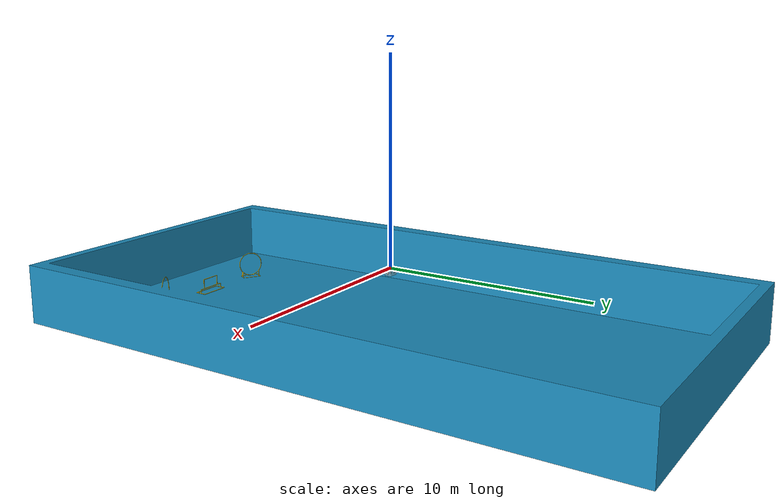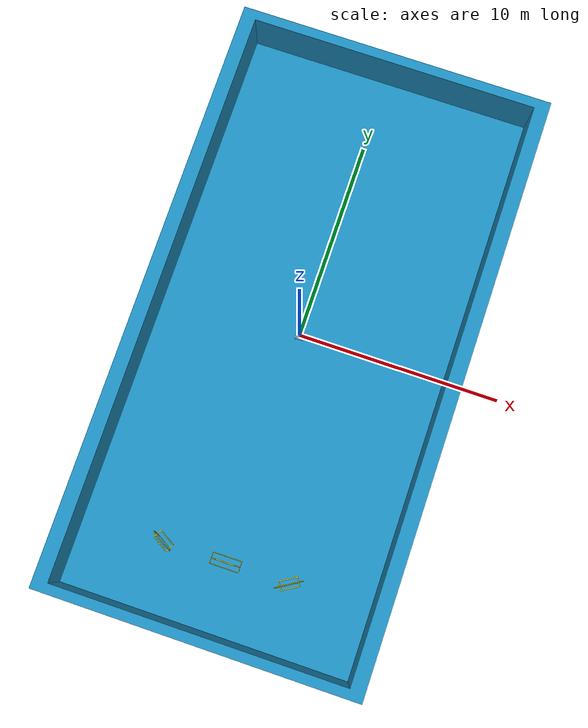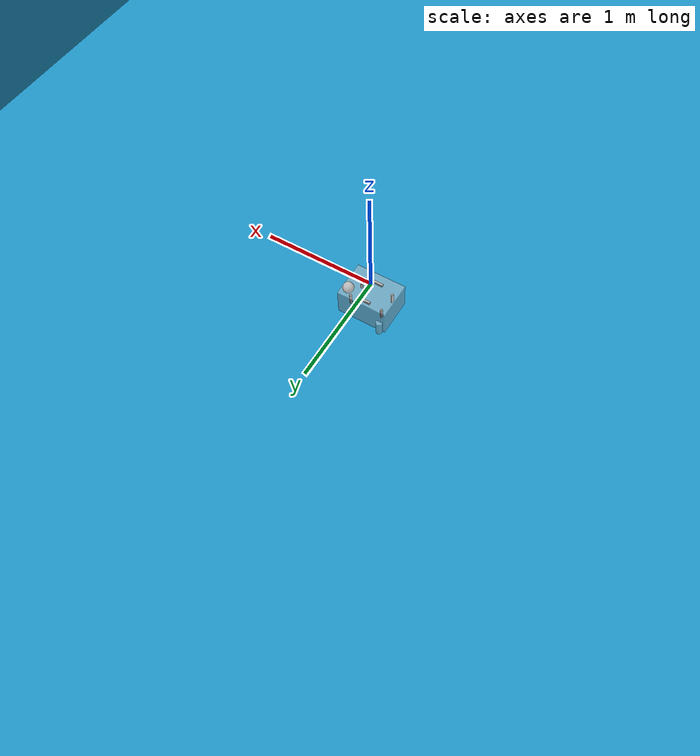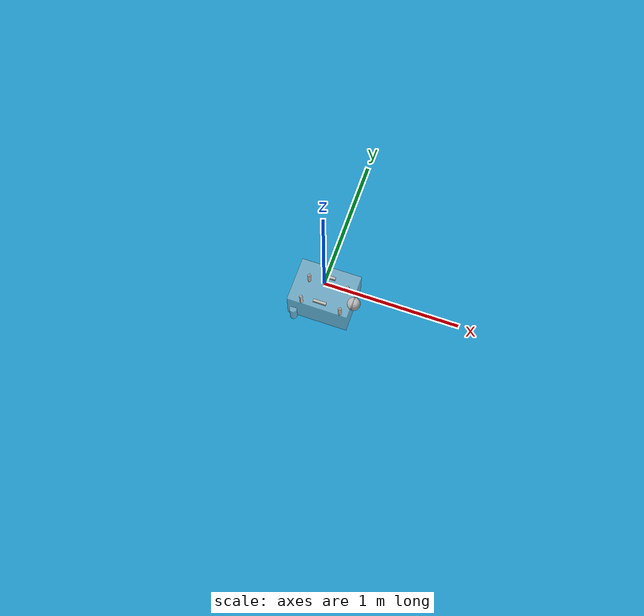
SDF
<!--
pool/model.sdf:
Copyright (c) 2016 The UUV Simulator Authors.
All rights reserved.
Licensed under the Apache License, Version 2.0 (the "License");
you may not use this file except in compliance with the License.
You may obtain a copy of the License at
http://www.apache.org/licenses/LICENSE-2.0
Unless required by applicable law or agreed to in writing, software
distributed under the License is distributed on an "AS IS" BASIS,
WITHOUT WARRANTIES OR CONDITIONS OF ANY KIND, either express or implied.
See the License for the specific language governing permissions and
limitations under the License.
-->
<sdf version="1.6">
 <world name="sand">
  <plugin filename="gz-sim-physics-system" name="gz::sim::systems::Physics"/>
  <plugin filename="gz-sim-user-commands-system" name="gz::sim::systems::UserCommands"/>
  <plugin filename="gz-sim-scene-broadcaster-system" name="gz::sim::systems::SceneBroadcaster"/>
  <plugin filename="libgz-sim-imu-system.so" name="gz::sim::systems::Imu"/>
  <plugin filename="gz-sim-sensors-system" name="gz::sim::systems::Sensors"/>
  <plugin filename="gz-sim-buoyancy-system" name="gz::sim::systems::Buoyancy">
   <graded_buoyancy>
    <default_density>997.4129353</default_density>
    <density_change><above_depth>0</above_depth><density>997.4129353</density></density_change>
   </graded_buoyancy>
   <enable>orca4</enable>
  </plugin>
  <include><uri>https://fuel.gazebosim.org/1.0/OpenRobotics/models/Sun</uri></include>
  <include><uri>model://pool</uri><pose>0 0 -3 0 0 0</pose></include>
  <include><uri>model://orca4</uri><pose>0 0 -0.2 0 0 0</pose></include>
  <include><uri>model://large_circle</uri><pose>3.28 -11.5 -3 0 0 0.55</pose></include>
  <include><uri>model://small_circle</uri><pose>-3.28 -11.5 -3 0 0 -0.55</pose></include>
  <include><uri>model://rectangle</uri><pose>0 -11.5 -3 0 0 0</pose></include>
 </world>
</sdf>

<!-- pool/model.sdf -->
<sdf version="1.7">
  <model name="pool">
    <static>true</static>
    <link name="link">
      <collision name="pool_collision">
        <scale>3 3 3</scale>
        <pose>0 0 0 0 0 0</pose>
        <geometry>
          <mesh>
            <uri>models://pool/pool.dae</uri>
          </mesh>
        </geometry>
      </collision>
      <visual name="pool_visual">
        <scale>3 3 3</scale>
        <pose>0 0 0 0 0 0</pose>
        <geometry>
          <mesh>
            <uri>models://pool/pool.dae</uri>
          </mesh>
        </geometry>
        <material>
          <ambient>0.11 0.55 0.74 1</ambient>
          <diffuse>0.11 0.55 0.74 1</diffuse>
          <specular>0.1 0.1 0.1 1</specular>
          <emissive>0.11 0.55 0.74 1</emissive>
        </material>
      </visual>
    </link>
  </model>
</sdf>

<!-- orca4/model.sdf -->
<sdf version="1.6">
  <model name="orca4">
    <pose>0 0 0 0 0 0</pose>

    <!-- BlueROV2 thruster reference: http://www.ardusub.com/introduction/features.html -->
    <!-- fluid_density: 1000 -->
    <!-- displaced_mass: 10.05 -->

    <link name="base_link">
      <inertial>
        <pose>0 0 0.011 0 0 0</pose>
        <mass>10</mass>
        <inertia>
          <ixx>0.09873097998042396</ixx>
          <ixy>0</ixy>
          <ixz>0</ixz>
          <iyy>0.17756847998042397</iyy>
          <iyz>0</iyz>
          <izz>0.2692441666666667</izz>
        </inertia>
      </inertial>

      <visual name="base_link_box">
        <pose>0 0 0 0 0 0</pose>
        <transparency>0.5</transparency>
        <geometry>
          <box>
            <size>0.457 0.338 0.25</size>
          </box>
        </geometry>
      </visual>

      <visual name="base_link_dome">
        <pose>0.2285 0 0 0 0 0</pose>
        <geometry>
          <sphere>
            <radius>0.05</radius>
          </sphere>
        </geometry>
        <material>
          <emissive>0 1 0 0</emissive>
        </material>
      </visual>

      <!-- Collision volume * fluid_density == displaced mass, used by BuoyancyPlugin -->
      <collision name="base_link_collision">
        <pose>0 0 0.06 0 0 0</pose>
        <geometry>
          <box>
            <size>0.457 0.338 0.06506286173008947</size>
          </box>
        </geometry>
      </collision>

      <!-- IMU sensor gyro and accel data will be sent to ArduSub -->
      <sensor name="imu_sensor" type="imu">
        <!-- Transform from the Gazebo body frame (x-forward, y-left, z-up)
             to the ArduPilot body frame (x-forward, y-right, z-down) -->
        <pose>0 0 0 3.141592653589793 0 0</pose>
        <always_on>1</always_on>
        <update_rate>1000.0</update_rate>
      </sensor>

    </link>

    <!-- Hydrodynamics plugin -->
    <plugin
        filename="gz-sim-hydrodynamics-system"
        name="gz::sim::systems::Hydrodynamics">
      <link_name>base_link</link_name>
      <water_density>1000</water_density>
      <!-- Added mass: -->
      <xDotU>0</xDotU>
      <yDotV>0</yDotV>
      <zDotW>0</zDotW>
      <kDotP>0</kDotP>
      <mDotQ>0</mDotQ>
      <nDotR>0</nDotR>
      <!-- First order stability derivative: -->
      <xU>0</xU>
      <yV>0</yV>
      <zW>0</zW>
      <kP>0</kP>
      <mQ>0</mQ>
      <nR>0</nR>
      <!-- Second order stability derivative: -->
      <xUabsU>-33.800000000000004</xUabsU>
      <yVabsV>-54.26875</yVabsV>
      <zWabsW>-73.37135</zWabsW>
      <kPabsP>-4.0</kPabsP>
      <mQabsQ>-4.0</mQabsQ>
      <nRabsR>-4.0</nRabsR>
    </plugin>

    <link name="thruster1">
      <pose>0.15 -0.09 0 -1.5707963267948966 1.5707963267948966 -0.7853981633974483</pose>
      <visual name="thruster_front">
        <pose>0 0 0.005 0 0 0</pose>
        <geometry>
          <box>
            <size>0.1 0.02 0.01</size>
          </box>
        </geometry>
        <material>
          <emissive>0 0 1 0</emissive>
        </material>
      </visual>
      <visual name="thruster_back">
        <pose>0 0 -0.005 0 0 0</pose>
        <geometry>
          <box>
            <size>0.1 0.02 0.01</size>
          </box>
        </geometry>
        <material>
          <emissive>1 0 0 0</emissive>
        </material>
      </visual>
      <inertial>
        <mass>0.002</mass>
        <inertia>
          <ixx>0.001</ixx>
          <ixy>0</ixy>
          <ixz>0</ixz>
          <iyy>0.001</iyy>
          <iyz>0</iyz>
          <izz>0.001</izz>
        </inertia>
      </inertial>
    </link>

    <link name="thruster2">
      <pose>0.15 0.09 0 -1.5707963267948966 1.5707963267948966 -2.356194490192345</pose>
      <visual name="thruster_front">
        <pose>0 0 0.005 0 0 0</pose>
        <geometry>
          <box>
            <size>0.1 0.02 0.01</size>
          </box>
        </geometry>
        <material>
          <emissive>0 0 1 0</emissive>
        </material>
      </visual>
      <visual name="thruster_back">
        <pose>0 0 -0.005 0 0 0</pose>
        <geometry>
          <box>
            <size>0.1 0.02 0.01</size>
          </box>
        </geometry>
        <material>
          <emissive>1 0 0 0</emissive>
        </material>
      </visual>
      <inertial>
        <mass>0.002</mass>
        <inertia>
          <ixx>0.001</ixx>
          <ixy>0</ixy>
          <ixz>0</ixz>
          <iyy>0.001</iyy>
          <iyz>0</iyz>
          <izz>0.001</izz>
        </inertia>
      </inertial>
    </link>

    <link name="thruster3">
      <pose>-0.15 -0.09 0 -1.5707963267948966 1.5707963267948966 0.7853981633974483</pose>
      <visual name="thruster_front">
        <pose>0 0 0.005 0 0 0</pose>
        <geometry>
          <box>
            <size>0.1 0.02 0.01</size>
          </box>
        </geometry>
        <material>
          <emissive>0 0 1 0</emissive>
        </material>
      </visual>
      <visual name="thruster_back">
        <pose>0 0 -0.005 0 0 0</pose>
        <geometry>
          <box>
            <size>0.1 0.02 0.01</size>
          </box>
        </geometry>
        <material>
          <emissive>1 0 0 0</emissive>
        </material>
      </visual>
      <inertial>
        <mass>0.002</mass>
        <inertia>
          <ixx>0.001</ixx>
          <ixy>0</ixy>
          <ixz>0</ixz>
          <iyy>0.001</iyy>
          <iyz>0</iyz>
          <izz>0.001</izz>
        </inertia>
      </inertial>
    </link>

    <link name="thruster4">
      <pose>-0.15 0.09 0 -1.5707963267948966 1.5707963267948966 2.356194490192345</pose>
      <visual name="thruster_front">
        <pose>0 0 0.005 0 0 0</pose>
        <geometry>
          <box>
            <size>0.1 0.02 0.01</size>
          </box>
        </geometry>
        <material>
          <emissive>0 0 1 0</emissive>
        </material>
      </visual>
      <visual name="thruster_back">
        <pose>0 0 -0.005 0 0 0</pose>
        <geometry>
          <box>
            <size>0.1 0.02 0.01</size>
          </box>
        </geometry>
        <material>
          <emissive>1 0 0 0</emissive>
        </material>
      </visual>
      <inertial>
        <mass>0.002</mass>
        <inertia>
          <ixx>0.001</ixx>
          <ixy>0</ixy>
          <ixz>0</ixz>
          <iyy>0.001</iyy>
          <iyz>0</iyz>
          <izz>0.001</izz>
        </inertia>
      </inertial>
    </link>

    <link name="thruster5">
      <pose>0 -0.105 0.09 0 0 0</pose>
      <visual name="thruster_front">
        <pose>0 0 0.005 0 0 0</pose>
        <geometry>
          <box>
            <size>0.1 0.02 0.01</size>
          </box>
        </geometry>
        <material>
          <emissive>0 0 1 0</emissive>
        </material>
      </visual>
      <visual name="thruster_back">
        <pose>0 0 -0.005 0 0 0</pose>
        <geometry>
          <box>
            <size>0.1 0.02 0.01</size>
          </box>
        </geometry>
        <material>
          <emissive>1 0 0 0</emissive>
        </material>
      </visual>
      <inertial>
        <mass>0.002</mass>
        <inertia>
          <ixx>0.001</ixx>
          <ixy>0</ixy>
          <ixz>0</ixz>
          <iyy>0.001</iyy>
          <iyz>0</iyz>
          <izz>0.001</izz>
        </inertia>
      </inertial>
    </link>

    <link name="thruster6">
      <pose>0 0.105 0.09 0 0 0</pose>
      <visual name="thruster_front">
        <pose>0 0 0.005 0 0 0</pose>
        <geometry>
          <box>
            <size>0.1 0.02 0.01</size>
          </box>
        </geometry>
        <material>
          <emissive>0 0 1 0</emissive>
        </material>
      </visual>
      <visual name="thruster_back">
        <pose>0 0 -0.005 0 0 0</pose>
        <geometry>
          <box>
            <size>0.1 0.02 0.01</size>
          </box>
        </geometry>
        <material>
          <emissive>1 0 0 0</emissive>
        </material>
      </visual>
      <inertial>
        <mass>0.002</mass>
        <inertia>
          <ixx>0.001</ixx>
          <ixy>0</ixy>
          <ixz>0</ixz>
          <iyy>0.001</iyy>
          <iyz>0</iyz>
          <izz>0.001</izz>
        </inertia>
      </inertial>
    </link>

    <joint name="thruster1_joint" type="revolute">
      <parent>base_link</parent>
      <child>thruster1</child>
      <axis>
        <xyz>0 0 -1</xyz>
      </axis>
    </joint>

    <joint name="thruster2_joint" type="revolute">
      <parent>base_link</parent>
      <child>thruster2</child>
      <axis>
        <xyz>0 0 -1</xyz>
      </axis>
    </joint>

    <joint name="thruster3_joint" type="revolute">
      <parent>base_link</parent>
      <child>thruster3</child>
      <axis>
        <xyz>0 0 -1</xyz>
      </axis>
    </joint>

    <joint name="thruster4_joint" type="revolute">
      <parent>base_link</parent>
      <child>thruster4</child>
      <axis>
        <xyz>0 0 -1</xyz>
      </axis>
    </joint>

    <joint name="thruster5_joint" type="revolute">
      <parent>base_link</parent>
      <child>thruster5</child>
      <axis>
        <xyz>0 0 -1</xyz>
      </axis>
    </joint>

    <joint name="thruster6_joint" type="revolute">
      <parent>base_link</parent>
      <child>thruster6</child>
      <axis>
        <xyz>0 0 -1</xyz>
      </axis>
    </joint>

    <plugin
        filename="gz-sim-thruster-system"
        name="gz::sim::systems::Thruster">
      <namespace>orca4</namespace>
      <joint_name>thruster1_joint</joint_name>
      <thrust_coefficient>0.02</thrust_coefficient>
      <fluid_density>1000</fluid_density>
      <propeller_diameter>0.1</propeller_diameter>
      <velocity_control>true</velocity_control>
      <use_angvel_cmd>False</use_angvel_cmd>
    </plugin>

    <plugin
        filename="gz-sim-thruster-system"
        name="gz::sim::systems::Thruster">
      <namespace>orca4</namespace>
      <joint_name>thruster2_joint</joint_name>
      <thrust_coefficient>0.02</thrust_coefficient>
      <fluid_density>1000</fluid_density>
      <propeller_diameter>0.1</propeller_diameter>
      <velocity_control>true</velocity_control>
      <use_angvel_cmd>False</use_angvel_cmd>
    </plugin>

    <plugin
        filename="gz-sim-thruster-system"
        name="gz::sim::systems::Thruster">
      <namespace>orca4</namespace>
      <joint_name>thruster3_joint</joint_name>
      <!-- Reverse spin to balance torque -->
      <thrust_coefficient>-0.02</thrust_coefficient>
      <fluid_density>1000</fluid_density>
      <propeller_diameter>0.1</propeller_diameter>
      <velocity_control>true</velocity_control>
      <use_angvel_cmd>False</use_angvel_cmd>
    </plugin>

    <plugin
        filename="gz-sim-thruster-system"
        name="gz::sim::systems::Thruster">
      <namespace>orca4</namespace>
      <joint_name>thruster4_joint</joint_name>
      <!-- Reverse spin to balance torque -->
      <thrust_coefficient>-0.02</thrust_coefficient>
      <fluid_density>1000</fluid_density>
      <propeller_diameter>0.1</propeller_diameter>
      <velocity_control>true</velocity_control>
      <use_angvel_cmd>False</use_angvel_cmd>
    </plugin>

    <plugin
        filename="gz-sim-thruster-system"
        name="gz::sim::systems::Thruster">
      <namespace>orca4</namespace>
      <joint_name>thruster5_joint</joint_name>
      <thrust_coefficient>0.02</thrust_coefficient>
      <fluid_density>1000</fluid_density>
      <propeller_diameter>0.1</propeller_diameter>
      <velocity_control>true</velocity_control>
      <use_angvel_cmd>False</use_angvel_cmd>
    </plugin>

    <plugin
        filename="gz-sim-thruster-system"
        name="gz::sim::systems::Thruster">
      <namespace>orca4</namespace>
      <joint_name>thruster6_joint</joint_name>
      <!-- Reverse spin to balance torque -->
      <thrust_coefficient>-0.02</thrust_coefficient>
      <fluid_density>1000</fluid_density>
      <propeller_diameter>0.1</propeller_diameter>
      <velocity_control>true</velocity_control>
      <use_angvel_cmd>False</use_angvel_cmd>
    </plugin>

    <plugin name="ArduPilotPlugin" filename="libArduPilotPlugin.so">
      <!-- Port settings -->
      <fdm_addr>127.0.0.1</fdm_addr>
      <fdm_port_in>9002</fdm_port_in>
      <connectionTimeoutMaxCount>5</connectionTimeoutMaxCount>
      <lock_step>1</lock_step>

      <!-- Transform from the Gazebo body frame (x-forward, y-left, z-up)
           to the ArduPilot body frame (x-forward, y-right, z-down) -->
      <modelXYZToAirplaneXForwardZDown>0 0 0 3.141592653589793 0 0</modelXYZToAirplaneXForwardZDown>

      <!-- Transform from the Gazebo world frame (ENU)
           to the ArduPilot world frame (NED) -->
      <gazeboXYZToNED>0 0 0 3.141592653589793 0 1.5707963267948966</gazeboXYZToNED>

      <!-- Sensors -->
      <imuName>imu_sensor</imuName>

      <!-- Thrusters -->
      <control channel="0">
        <jointName>thruster1_joint</jointName>
        <servo_min>1100</servo_min>
        <servo_max>1900</servo_max>
        <type>COMMAND</type>
        <cmd_topic>/model/orca4/joint/thruster1_joint/cmd_thrust</cmd_topic>
        <offset>-0.5</offset>
        <multiplier>100</multiplier>
      </control>
      <control channel="1">
        <jointName>thruster2_joint</jointName>
        <servo_min>1100</servo_min>
        <servo_max>1900</servo_max>
        <type>COMMAND</type>
        <cmd_topic>/model/orca4/joint/thruster2_joint/cmd_thrust</cmd_topic>
        <offset>-0.5</offset>
        <multiplier>100</multiplier>
      </control>
      <control channel="2">
        <jointName>thruster3_joint</jointName>
        <servo_min>1100</servo_min>
        <servo_max>1900</servo_max>
        <type>COMMAND</type>
        <cmd_topic>/model/orca4/joint/thruster3_joint/cmd_thrust</cmd_topic>
        <offset>-0.5</offset>
        <multiplier>100</multiplier>
      </control>
      <control channel="3">
        <jointName>thruster4_joint</jointName>
        <servo_min>1100</servo_min>
        <servo_max>1900</servo_max>
        <type>COMMAND</type>
        <cmd_topic>/model/orca4/joint/thruster4_joint/cmd_thrust</cmd_topic>
        <offset>-0.5</offset>
        <multiplier>100</multiplier>
      </control>
      <control channel="4">
        <jointName>thruster5_joint</jointName>
        <servo_min>1100</servo_min>
        <servo_max>1900</servo_max>
        <type>COMMAND</type>
        <cmd_topic>/model/orca4/joint/thruster5_joint/cmd_thrust</cmd_topic>
        <offset>-0.5</offset>
        <multiplier>100</multiplier>
      </control>
      <control channel="5">
        <jointName>thruster6_joint</jointName>
        <servo_min>1100</servo_min>
        <servo_max>1900</servo_max>
        <type>COMMAND</type>
        <cmd_topic>/model/orca4/joint/thruster6_joint/cmd_thrust</cmd_topic>
        <offset>-0.5</offset>
        <multiplier>100</multiplier>
      </control>

    </plugin>

    <!-- Left camera link -->
    <link name="left_camera_link">
      <pose>-0.18 0.18 -0.06749999999999999 0 0 0</pose>
      <visual name="left_camera_tube">
        <transparency>0.5</transparency>
        <geometry>
          <cylinder>
            <length>0.135</length>
            <radius>0.0275</radius>
          </cylinder>
        </geometry>
      </visual>
      <sensor name="left_camera" type="camera">
        <pose>0 0 -0.08750000000000001 0 1.5707963267948966 0</pose>
        <camera>
          <horizontal_fov>1.4</horizontal_fov>
          <image>
            <width>800</width>
            <height>600</height>
          </image>
          <clip>
            <near>0.2</near>
            <far>4</far>
          </clip>
        </camera>
        <always_on>1</always_on>
        <update_rate>5</update_rate>
        <visualize>true</visualize>
        <topic>stereo_left</topic>
      </sensor>
      <inertial>
        <mass>0.001</mass>
        <inertia>
          <ixx>0.001</ixx>
          <ixy>0</ixy>
          <ixz>0</ixz>
          <iyy>0.001</iyy>
          <iyz>0</iyz>
          <izz>0.001</izz>
        </inertia>
      </inertial>
    </link>

    <!-- Attach left_camera_link to base_link -->
    <joint name="left_camera_joint" type="fixed">
      <parent>base_link</parent>
      <child>left_camera_link</child>
    </joint>

    <!-- Right camera link -->
    <link name="right_camera_link">
      <pose>-0.18 -0.18 -0.06749999999999999 0 0 0</pose>
      <visual name="right_camera_tube">
        <transparency>0.5</transparency>
        <geometry>
          <cylinder>
            <length>0.135</length>
            <radius>0.0275</radius>
          </cylinder>
        </geometry>
      </visual>
      <sensor name="right_camera" type="camera">
        <pose>0 0 -0.08750000000000001 0 0 0</pose>
        <camera>
          <horizontal_fov>1.4</horizontal_fov>
          <image>
            <width>800</width>
            <height>600</height>
          </image>
          <clip>
            <near>0.2</near>
            <far>4</far>
          </clip>
        </camera>
        <always_on>1</always_on>
        <update_rate>5</update_rate>
        <visualize>true</visualize>
        <topic>stereo_right</topic>
      </sensor>
      <inertial>
        <mass>0.001</mass>
        <inertia>
          <ixx>0.001</ixx>
          <ixy>0</ixy>
          <ixz>0</ixz>
          <iyy>0.001</iyy>
          <iyz>0</iyz>
          <izz>0.001</izz>
        </inertia>
      </inertial>
    </link>

    <!-- Attach right_camera_link to base_link -->
    <joint name="right_camera_joint" type="fixed">
      <parent>base_link</parent>
      <child>right_camera_link</child>
    </joint>

    <!-- NOT WORKING -->
    <link name="sonar_link">
      <sensor type="ray" name="ray">
        <topic>sonar</topic>
        <pose>0.25 0 0 0 -1.57 0</pose>
        <update_rate>50</update_rate>
        <ray>
          <scan>
            <horizontal>
              <samples>1000</samples>
              <resolution>1.0</resolution>
              <min_angle>-0.261799</min_angle>
              <max_angle>0.261799</max_angle>
            </horizontal>
            <vertical>
                <samples>1</samples>
                <resolution>0.01</resolution>
                <min_angle>0</min_angle>
                <max_angle>0</max_angle>
            </vertical>
          </scan>
          <range>
            <min>0.01</min>
            <max>10.75</max>
            <resolution>0.01</resolution>
          </range>
        </ray>
        <always_on>1</always_on>
        <visualize>true</visualize>
      </sensor>
      <inertial>
        <pose>0 0 0 0 0 0</pose>
        <mass>0.01</mass>
      </inertial>
    </link>

    <joint name="sonar_joint" type="fixed">
      <pose>0 0 0 0 -1.5707963267948966 0</pose>
      <parent>base_link</parent>
      <child>sonar_link</child>
    </joint>

    <!-- Publish the ground-truth pose for rviz -->
    <plugin
        filename="gz-sim-odometry-publisher-system"
        name="gz::sim::systems::OdometryPublisher">
      <odom_frame>map</odom_frame>
      <robot_base_frame>orca4</robot_base_frame>
      <dimensions>3</dimensions>
    </plugin>

  </model>
</sdf>

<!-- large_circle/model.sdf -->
<sdf version="1.7">
  <model name="large_circle">
    <static>true</static>
    <link name="link">
      <collision name="large_circle_col">
        <pose>0 0 0 0 0 0</pose>
        <geometry>
          <mesh>
            <uri>models://large_circle/large_circle.dae</uri>
          </mesh>
        </geometry>
      </collision>
      <visual name="pool_visual">
        <pose>0 0 0 0 0 0</pose>
        <geometry>
          <mesh>
            <uri>models://large_circle/large_circle.dae</uri>
          </mesh>
        </geometry>
        <material>
          <ambient>1 0.8 0 1</ambient>
          <diffuse>1 0.8 0 1</diffuse>
          <specular>0.1 0.1 0.1 1</specular>
          <emissive>1 0.8 0 1</emissive>
        </material>
      </visual>
    </link>
  </model>
</sdf>

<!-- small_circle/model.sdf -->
<sdf version="1.7">
  <model name="small_circle">
    <static>true</static>
    <link name="link">
      <collision name="small_circle_col">
        <pose>0 0 0 0 0 0</pose>
        <geometry>
          <mesh>
            <uri>models://small_circle/small_circle.dae</uri>
          </mesh>
        </geometry>
      </collision>
      <visual name="pool_visual">
        <pose>0 0 0 0 0 0</pose>
        <geometry>
          <mesh>
            <uri>models://small_circle/small_circle.dae</uri>
          </mesh>
        </geometry>
        <material>
          <ambient>1 0.8 0 1</ambient>
          <diffuse>1 0.8 0 1</diffuse>
          <specular>0.1 0.1 0.1 1</specular>
          <emissive>1 0.8 0 1</emissive>
        </material>
      </visual>
    </link>
  </model>
</sdf>

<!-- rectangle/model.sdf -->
<sdf version="1.7">
  <model name="rectangle">
    <static>true</static>
    <link name="link">
      <collision name="rectangle_col">
        <pose>0 0 0 0 0 0</pose>
        <geometry>
          <mesh>
            <uri>models://rectangle/rectangle.dae</uri>
          </mesh>
        </geometry>
      </collision>
      <visual name="pool_visual">
        <pose>0 0 0 0 0 0</pose>
        <geometry>
          <mesh>
            <uri>models://rectangle/rectangle.dae</uri>
          </mesh>
        </geometry>
        <material>
          <ambient>1 0.8 0 1</ambient>
          <diffuse>1 0.8 0 1</diffuse>
          <specular>0.1 0.1 0.1 1</specular>
          <emissive>1 0.8 0 1</emissive>
        </material>
      </visual>
    </link>
  </model>
</sdf>
